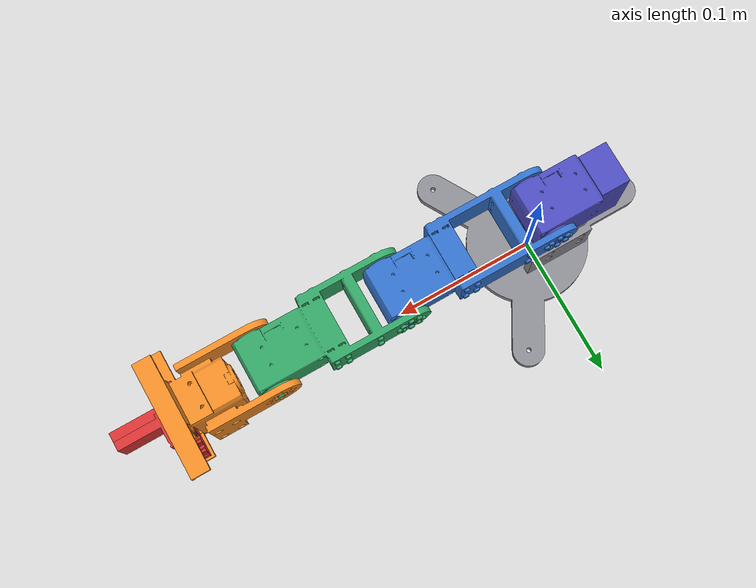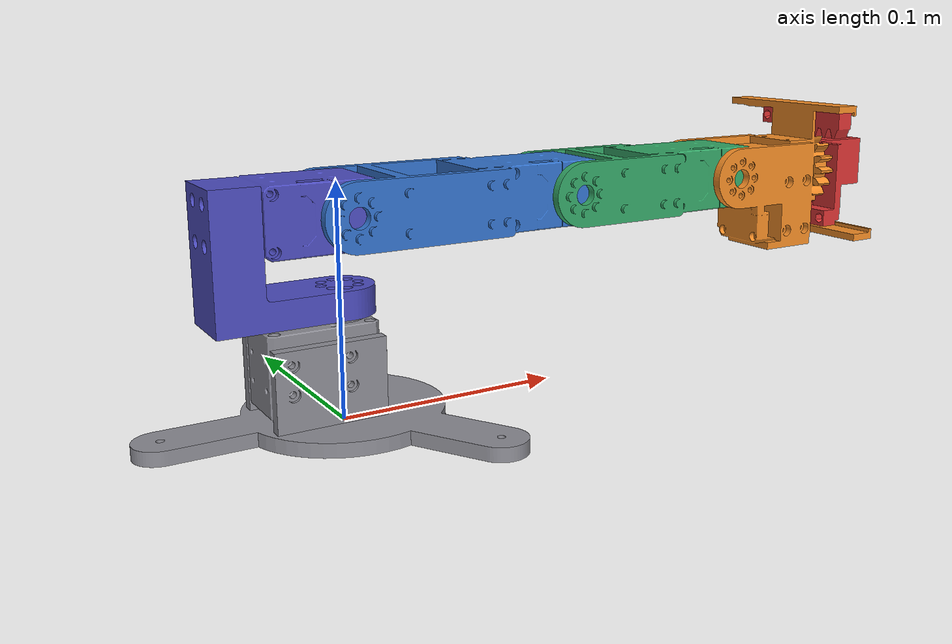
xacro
<?xml version="1.0"?>
<robot name="braco2" xmlns:xacro="http://www.ros.org/wiki/xacro">

  <xacro:arg name="controladores" default="$(find braco2_description)/config/controladores.yaml"/>
  <xacro:include filename="braco_gazebo.urdf.xacro"/>

  <gazebo>
    <plugin filename="gz-sim-detachable-joint-system" name="gz::sim::systems::DetachableJoint">
      <parent_link>link4</parent_link>
      <child_model>objeto</child_model>
      <child_link>link</child_link>
      <attach_topic>/braco2/prender</attach_topic>
      <detach_topic>/braco2/soltar</detach_topic>
      <output_topic>/braco2/estado_pega</output_topic>
    </plugin>
  </gazebo>

</robot>

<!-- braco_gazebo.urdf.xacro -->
<!-- ARQUIVO GERADO por cad/gerar_urdf.py: não editar à mão. -->
<robot name="braco2" xmlns:xacro="http://www.ros.org/wiki/xacro">

  <!-- Caminho do .yaml dos controladores. O padrão aponta para o pacote
       instalado; a verificação do gerador passa outro caminho. -->
  <xacro:arg name="controladores" default="$(find braco2_description)/config/controladores.yaml"/>

  <!-- A descrição do braço, sem mudança (mesma pasta). -->
  <xacro:include filename="braco.urdf"/>

  <ros2_control name="braco2_gazebo" type="system">
    <hardware>
      <plugin>gz_ros2_control/GazeboSimSystem</plugin>
    </hardware>
    <joint name="junta_base">
      <command_interface name="position"/>
      <state_interface name="position"/>
      <state_interface name="velocity"/>
      <state_interface name="effort"/>
    </joint>
    <joint name="junta_ombro">
      <command_interface name="position"/>
      <state_interface name="position"/>
      <state_interface name="velocity"/>
      <state_interface name="effort"/>
    </joint>
    <joint name="junta_cotovelo">
      <command_interface name="position"/>
      <state_interface name="position"/>
      <state_interface name="velocity"/>
      <state_interface name="effort"/>
    </joint>
    <joint name="junta_punho">
      <command_interface name="position"/>
      <state_interface name="position"/>
      <state_interface name="velocity"/>
      <state_interface name="effort"/>
    </joint>
    <joint name="junta_garra">
      <command_interface name="position"/>
      <state_interface name="position"/>
      <state_interface name="velocity"/>
      <state_interface name="effort"/>
    </joint>
    <joint name="junta_garra_espelho">
      <state_interface name="position"/>
      <state_interface name="velocity"/>
    </joint>
  </ros2_control>

  <!-- Plugin que liga o Gazebo ao ros2_control: sobe o controller_manager
       dentro do simulador e carrega o .yaml dos controladores. -->
  <gazebo>
    <plugin filename="gz_ros2_control-system" name="gz_ros2_control::GazeboSimROS2ControlPlugin">
      <parameters>$(arg controladores)</parameters>
    </plugin>
  </gazebo>

</robot>

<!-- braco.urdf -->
<robot name="braco2">

  <material name="cinza"><color rgba="0.55 0.55 0.58 1.0"/></material>
  <material name="azul_escuro"><color rgba="0.30 0.30 0.75 1.0"/></material>
  <material name="azul"><color rgba="0.20 0.45 0.80 1.0"/></material>
  <material name="verde"><color rgba="0.20 0.65 0.40 1.0"/></material>
  <material name="laranja"><color rgba="0.95 0.55 0.15 1.0"/></material>
  <material name="vermelho"><color rgba="0.85 0.20 0.20 1.0"/></material>

  <!-- world: link vazio que segura a base (o braço é fixado na mesa). O KDL
       não aceita inércia no link raiz, e o MoveIt2 precisa de um frame fixo. -->
  <link name="world"/>
  <joint name="world_to_base" type="fixed">
    <parent link="world"/>
    <child link="base_link"/>
    <origin xyz="0 0 0" rpy="0 0 0"/>
  </joint>

  <!-- ===================== base_link ===================== -->
  <link name="base_link">
    <visual>
      <origin xyz="0 0 0" rpy="0 0 0"/>
      <geometry><mesh filename="package://braco2_description/meshes/base_link.stl" scale="0.001 0.001 0.001"/></geometry>
      <material name="cinza"/>
    </visual>
    <collision>
      <origin xyz="-0.01875 0 0.003" rpy="0 0 0"/>
      <geometry><box size="0.1365 0.153904 0.008"/></geometry>
    </collision>
    <collision>
      <origin xyz="-0.012 0 0.0225" rpy="0 0 0"/>
      <geometry><box size="0.0485 0.0405 0.035"/></geometry>
    </collision>
    <collision>
      <origin xyz="-0.012 0 0.02935" rpy="0 0 0"/>
      <geometry><box size="0.0485 0.0305 0.0447"/></geometry>
    </collision>
    <inertial>
      <origin xyz="-0.009115 0.000204 0.019000" rpy="0 0 0"/>
      <mass value="0.163529"/>
      <inertia ixx="1.05389732e-04" ixy="3.36721098e-07" ixz="1.32190372e-05" iyy="1.22373715e-04" iyz="-2.72612884e-07" izz="1.59760563e-04"/>
    </inertial>
  </link>

  <!-- ===================== link1 ===================== -->
  <link name="link1">
    <visual>
      <origin xyz="0 0 0" rpy="0 0 0"/>
      <geometry><mesh filename="package://braco2_description/meshes/link1.stl" scale="0.001 0.001 0.001"/></geometry>
      <material name="azul_escuro"/>
    </visual>
    <collision>
      <origin xyz="-0.0205 0 0.02825" rpy="0 0 0"/>
      <geometry><box size="0.0715 0.0305 0.0585"/></geometry>
    </collision>
    <collision>
      <origin xyz="-0.012 0.00235 0.04225" rpy="0 0 0"/>
      <geometry><box size="0.0485 0.0447 0.0305"/></geometry>
    </collision>
    <inertial>
      <origin xyz="-0.023308 0.001280 0.032799" rpy="0 0 0"/>
      <mass value="0.146220"/>
      <inertia ixx="5.17310159e-05" ixy="-3.32454185e-06" ixz="-2.27066681e-06" iyy="8.97761574e-05" iyz="-1.76275354e-06" izz="6.22354889e-05"/>
    </inertial>
  </link>

  <!-- ===================== link2 ===================== -->
  <link name="link2">
    <visual>
      <origin xyz="0 0 0" rpy="0 0 0"/>
      <geometry><mesh filename="package://braco2_description/meshes/link2.stl" scale="0.001 0.001 0.001"/></geometry>
      <material name="azul"/>
    </visual>
    <collision>
      <origin xyz="0.02775 0.021 0" rpy="0 0 0"/>
      <geometry><box size="0.086 0.006 0.0305"/></geometry>
    </collision>
    <collision>
      <origin xyz="0.02775 -0.021 0" rpy="0 0 0"/>
      <geometry><box size="0.086 0.006 0.0305"/></geometry>
    </collision>
    <collision>
      <origin xyz="0.02125 0 0" rpy="0 0 0"/>
      <geometry><box size="0.0095 0.04 0.0305"/></geometry>
    </collision>
    <collision>
      <origin xyz="0.06225 0 0" rpy="0 0 0"/>
      <geometry><box size="0.017 0.04 0.0305"/></geometry>
    </collision>
    <collision>
      <origin xyz="0.093 0.00235 0" rpy="0 0 0"/>
      <geometry><box size="0.0485 0.0447 0.0305"/></geometry>
    </collision>
    <inertial>
      <origin xyz="0.067687 0.001286 -0.000229" rpy="0 0 0"/>
      <mass value="0.145509"/>
      <inertia ixx="3.49445009e-05" ixy="-5.94484335e-06" ixz="6.04589824e-07" iyy="1.54922917e-04" iyz="-3.73676032e-08" izz="1.71239124e-04"/>
    </inertial>
  </link>

  <!-- ===================== link3 ===================== -->
  <link name="link3">
    <visual>
      <origin xyz="0 0 0" rpy="0 0 0"/>
      <geometry><mesh filename="package://braco2_description/meshes/link3.stl" scale="0.001 0.001 0.001"/></geometry>
      <material name="verde"/>
    </visual>
    <collision>
      <origin xyz="0.02025 0.021 0" rpy="0 0 0"/>
      <geometry><box size="0.071 0.006 0.0305"/></geometry>
    </collision>
    <collision>
      <origin xyz="0.02025 -0.021 0" rpy="0 0 0"/>
      <geometry><box size="0.071 0.006 0.0305"/></geometry>
    </collision>
    <collision>
      <origin xyz="0.02125 0 0" rpy="0 0 0"/>
      <geometry><box size="0.0095 0.04 0.0305"/></geometry>
    </collision>
    <collision>
      <origin xyz="0.04725 0 0" rpy="0 0 0"/>
      <geometry><box size="0.017 0.04 0.0305"/></geometry>
    </collision>
    <collision>
      <origin xyz="0.078 0.00235 0" rpy="0 0 0"/>
      <geometry><box size="0.0485 0.0447 0.0305"/></geometry>
    </collision>
    <inertial>
      <origin xyz="0.053964 0.001193 -0.000213" rpy="0 0 0"/>
      <mass value="0.124269"/>
      <inertia ixx="3.00560734e-05" ixy="-4.52300481e-06" ixz="4.45460597e-07" iyy="9.97806231e-05" iyz="-2.71767370e-08" izz="1.13955943e-04"/>
    </inertial>
  </link>

  <!-- ===================== link4 ===================== -->
  <link name="link4">
    <visual>
      <origin xyz="0 0 0" rpy="0 0 0"/>
      <geometry><mesh filename="package://braco2_description/meshes/link4.stl" scale="0.001 0.001 0.001"/></geometry>
      <material name="laranja"/>
    </visual>
    <collision>
      <origin xyz="0.016375 0.018625 -0.009375" rpy="0 0 0"/>
      <geometry><box size="0.06325 0.01075 0.04925"/></geometry>
    </collision>
    <collision>
      <origin xyz="0.016375 -0.018625 -0.009375" rpy="0 0 0"/>
      <geometry><box size="0.06325 0.01075 0.04925"/></geometry>
    </collision>
    <collision>
      <origin xyz="0.03935 0 -0.012" rpy="0 0 0"/>
      <geometry><box size="0.0447 0.0305 0.0485"/></geometry>
    </collision>
    <collision>
      <origin xyz="0.0526 0.007038 0.021625" rpy="0 0 0"/>
      <geometry><box size="0.0292 0.077925 0.02275"/></geometry>
    </collision>
    <collision>
      <origin xyz="0.0466 -0.007038 -0.032875" rpy="0 0 0"/>
      <geometry><box size="0.0412 0.077925 0.01375"/></geometry>
    </collision>
    <collision>
      <origin xyz="0.06 0 0" rpy="0 0 0"/>
      <geometry><box size="0.01 0.041975 0.041865"/></geometry>
    </collision>
    <inertial>
      <origin xyz="0.038535 -0.000205 -0.011007" rpy="0 0 0"/>
      <mass value="0.129153"/>
      <inertia ixx="6.09036574e-05" ixy="-3.62067470e-08" ixz="-1.29674768e-06" iyy="7.06973307e-05" iyz="-1.93013849e-06" izz="5.84227981e-05"/>
    </inertial>
  </link>

  <!-- ===================== mordente_cima ===================== -->
  <link name="mordente_cima">
    <visual>
      <origin xyz="0 0 0" rpy="0 0 0"/>
      <geometry><mesh filename="package://braco2_description/meshes/mordente_cima.stl" scale="0.001 0.001 0.001"/></geometry>
      <material name="vermelho"/>
    </visual>
    <collision>
      <origin xyz="0.06025 -0.003212 0.02225" rpy="0 0 0"/>
      <geometry><box size="0.0105 0.054425 0.0145"/></geometry>
    </collision>
    <collision>
      <origin xyz="0.0815 0.011 0.00725" rpy="0 0 0"/>
      <geometry><box size="0.036 0.024 0.0405"/></geometry>
    </collision>
    <inertial>
      <origin xyz="0.070182 0.003014 0.011064" rpy="0 0 0"/>
      <mass value="0.015549"/>
      <inertia ixx="4.49258831e-06" ixy="-2.40560988e-07" ixz="1.42936863e-06" iyy="4.46525180e-06" iyz="5.06167374e-07" izz="3.97863197e-06"/>
    </inertial>
  </link>

  <!-- ===================== mordente_baixo ===================== -->
  <link name="mordente_baixo">
    <visual>
      <origin xyz="0 0 0" rpy="0 0 0"/>
      <geometry><mesh filename="package://braco2_description/meshes/mordente_baixo.stl" scale="0.001 0.001 0.001"/></geometry>
      <material name="vermelho"/>
    </visual>
    <collision>
      <origin xyz="0.06025 0.003212 -0.02225" rpy="0 0 0"/>
      <geometry><box size="0.0105 0.054425 0.0145"/></geometry>
    </collision>
    <collision>
      <origin xyz="0.0815 -0.011 -0.00725" rpy="0 0 0"/>
      <geometry><box size="0.036 0.024 0.0405"/></geometry>
    </collision>
    <inertial>
      <origin xyz="0.070182 -0.003014 -0.011064" rpy="0 0 0"/>
      <mass value="0.015549"/>
      <inertia ixx="4.49258831e-06" ixy="2.40560988e-07" ixz="-1.42936863e-06" iyy="4.46525180e-06" iyz="5.06167374e-07" izz="3.97863197e-06"/>
    </inertial>
  </link>

  <!-- base: gira em torno de Z. Servo XM430-W350-T: effort = stall a 12 V (4.1 N.m),
       velocity = 46 rev/min sem carga. Limites: -180 a +180 graus. -->
  <joint name="junta_base" type="revolute">
    <parent link="base_link"/>
    <child link="link1"/>
    <origin xyz="0 0 0.046" rpy="0 0 0"/>
    <axis xyz="0 0 1"/>
    <limit lower="-3.14159" upper="3.14159" effort="4.1" velocity="4.817"/>
  </joint>

  <!-- ombro: positivo levanta o braço. Servo XM430-W350-T: effort = stall a 12 V (4.1 N.m),
       velocity = 46 rev/min sem carga. Limites: -54 a +90 graus. -->
  <joint name="junta_ombro" type="revolute">
    <parent link="link1"/>
    <child link="link2"/>
    <origin xyz="0 0 0.04225" rpy="0 0 0"/>
    <axis xyz="0 -1 0"/>
    <limit lower="-0.94247" upper="1.57079" effort="4.1" velocity="4.817"/>
  </joint>

  <!-- cotovelo: positivo levanta o antebraço. Servo XM430-W350-T: effort = stall a 12 V (4.1 N.m),
       velocity = 46 rev/min sem carga. Limites: -90 a +90 graus. -->
  <joint name="junta_cotovelo" type="revolute">
    <parent link="link2"/>
    <child link="link3"/>
    <origin xyz="0.105 0 0" rpy="0 0 0"/>
    <axis xyz="0 -1 0"/>
    <limit lower="-1.57079" upper="1.57079" effort="4.1" velocity="4.817"/>
  </joint>

  <!-- punho: positivo levanta a mão. Servo XC430-W240-T: effort = stall a 12 V (1.9 N.m),
       velocity = 70 rev/min sem carga. Limites: -90 a +90 graus. -->
  <joint name="junta_punho" type="revolute">
    <parent link="link3"/>
    <child link="link4"/>
    <origin xyz="0.09 0 0" rpy="0 0 0"/>
    <axis xyz="0 -1 0"/>
    <limit lower="-1.57079" upper="1.57079" effort="1.9" velocity="7.330"/>
  </joint>

  <joint name="junta_garra" type="prismatic">
    <parent link="link4"/>
    <child link="mordente_cima"/>
    <origin xyz="0 0 0" rpy="0 0 0"/>
    <axis xyz="0 1 0"/>
    <limit lower="0" upper="0.02" effort="52.8" velocity="0.1319"/>
  </joint>

  <joint name="junta_garra_espelho" type="prismatic">
    <parent link="link4"/>
    <child link="mordente_baixo"/>
    <origin xyz="0 0 0" rpy="0 0 0"/>
    <axis xyz="0 -1 0"/>
    <limit lower="0" upper="0.02" effort="52.8" velocity="0.1319"/>
    <mimic joint="junta_garra" multiplier="1" offset="0"/>
  </joint>

  <!-- TCP: frame sem geometria entre os dedos, no meio do comprimento deles.
       É o ponto que a cinemática inversa posiciona (L4 = 83.5 mm do punho). -->
  <link name="tcp"/>
  <joint name="junta_tcp" type="fixed">
    <parent link="link4"/>
    <child link="tcp"/>
    <origin xyz="0.0835 0 0" rpy="0 0 0"/>
  </joint>

</robot>
